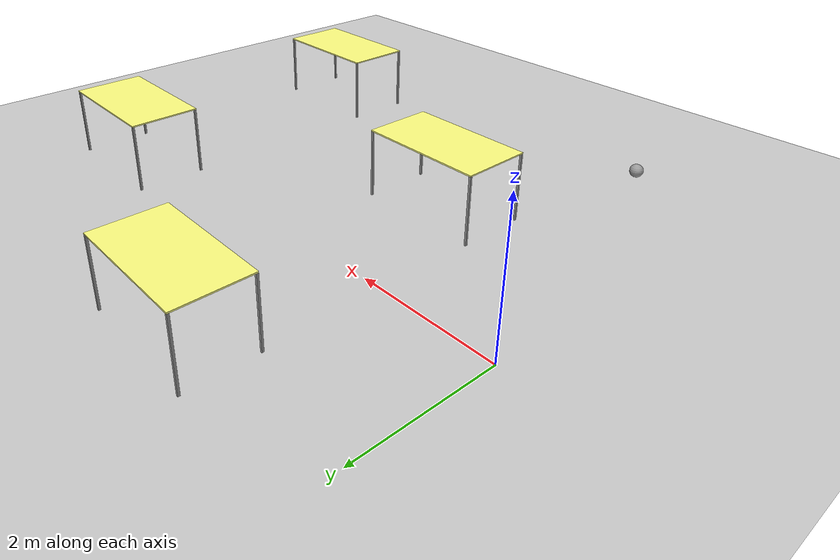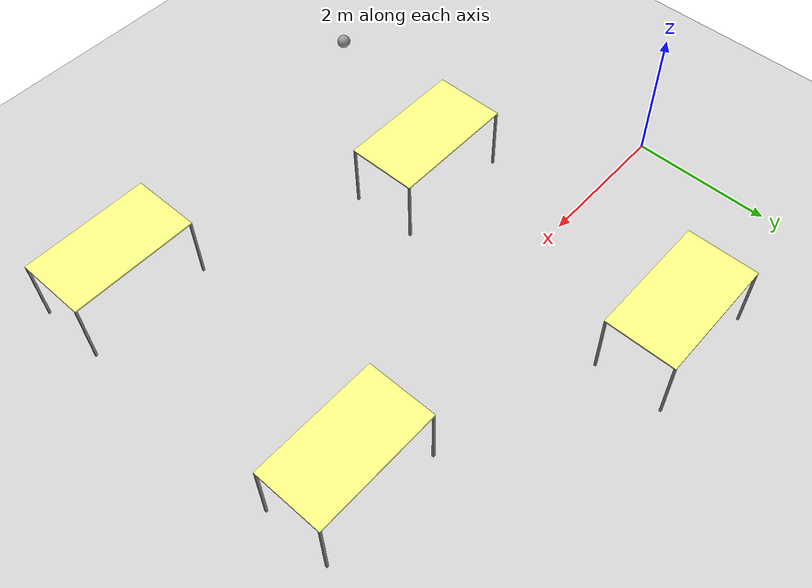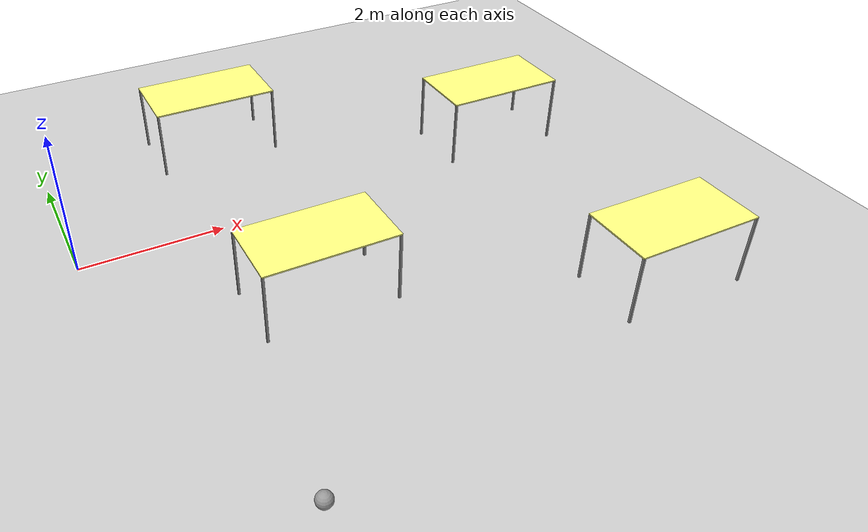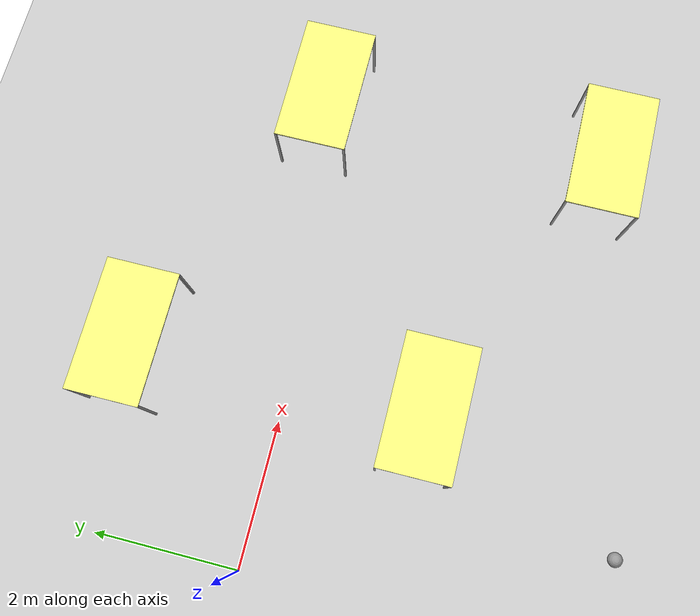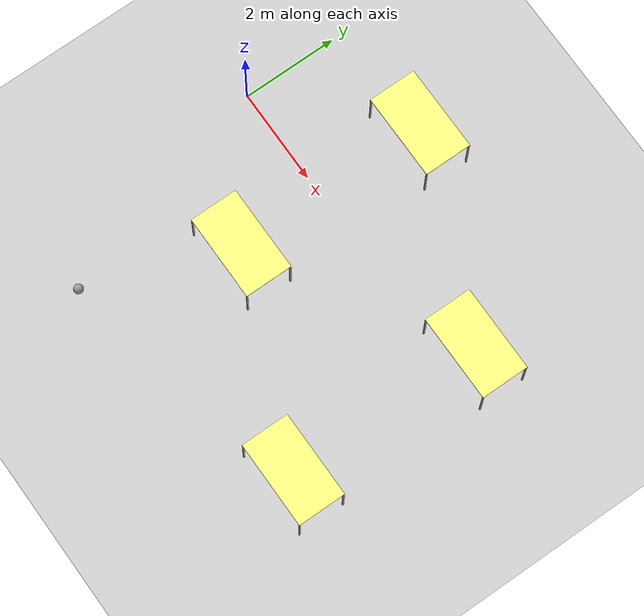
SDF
<sdf version="1.6">
 <world name="default">
  <model name="ground_plane">
   <static>1</static>
   <link name="link">
    <collision name="collision">
     <geometry><plane><normal>0 0 1</normal><size>100 100</size></plane></geometry>
     <surface><friction><ode><mu>100</mu><mu2>50</mu2></ode></friction></surface>
    </collision>
    <visual name="visual">
     <cast_shadows>0</cast_shadows>
     <geometry><plane><normal>0 0 1</normal><size>100 100</size></plane></geometry>
     <material>
      <script><uri>file://media/materials/scripts/gazebo.material</uri><name>Gazebo/Grey</name></script>
     </material>
    </visual>
   </link>
  </model>
  <model name="custom_table_clone_5">
   <link name="link_0">
    <pose>-1e-06 0 0.4 0 -0 0</pose>
    <inertial>
     <mass>1</mass>
     <inertia>
      <ixx>0.166667</ixx>
      <ixy>0</ixy>
      <ixz>0</ixz>
      <iyy>0.166667</iyy>
      <iyz>0</iyz>
      <izz>0.166667</izz>
     </inertia>
    </inertial>
    <visual name="visual">
     <geometry><box><size>1.8 1 0.02</size></box></geometry>
     <material>
      <lighting>1</lighting>
      <script><uri>file://media/materials/scripts/gazebo.material</uri><name>Gazebo/Grey</name></script>
      <shader type="pixel"><normal_map>__default__</normal_map></shader>
      <ambient>0.4 0.4 0.4 0.5</ambient>
      <diffuse>1 1 0.5 1</diffuse>
      <specular>0.4 0.4 0.4 1</specular>
      <emissive>0 0 0 1</emissive>
     </material>
    </visual>
    <collision name="collision">
     <geometry><box><size>1.8 1 0.02</size></box></geometry>
     <surface>
      <friction>
       <ode><mu>1</mu><mu2>1</mu2><fdir1>0 0 0</fdir1><slip1>0</slip1><slip2>0</slip2></ode>
       <torsional>
        <coefficient>1</coefficient>
        <patch_radius>0</patch_radius>
        <surface_radius>0</surface_radius>
        <use_patch_radius>1</use_patch_radius>
        <ode><slip>0</slip></ode>
       </torsional>
      </friction>
      <bounce><restitution_coefficient>0</restitution_coefficient><threshold>1e+06</threshold></bounce>
      <contact>
       <collide_without_contact>0</collide_without_contact>
       <collide_without_contact_bitmask>1</collide_without_contact_bitmask>
       <collide_bitmask>1</collide_bitmask>
       <ode>
        <soft_cfm>0</soft_cfm>
        <soft_erp>0.2</soft_erp>
        <kp>1e+13</kp>
        <kd>1</kd>
        <max_vel>0.01</max_vel>
        <min_depth>0</min_depth>
       </ode>
       <bullet>
        <split_impulse>1</split_impulse>
        <split_impulse_penetration_threshold>-0.01</split_impulse_penetration_threshold>
        <soft_cfm>0</soft_cfm>
        <soft_erp>0.2</soft_erp>
        <kp>1e+13</kp>
        <kd>1</kd>
       </bullet>
      </contact>
     </surface>
    </collision>
   </link>
   <link name="link_1_clone">
    <pose>0.884999 -0.485 -0.1 0 -0 0</pose>
    <inertial>
     <mass>1</mass>
     <inertia>
      <ixx>0.166667</ixx>
      <ixy>0</ixy>
      <ixz>0</ixz>
      <iyy>0.166667</iyy>
      <iyz>0</iyz>
      <izz>0.166667</izz>
     </inertia>
    </inertial>
    <visual name="visual">
     <geometry><box><size>0.03 0.03 0.98</size></box></geometry>
     <material>
      <lighting>1</lighting>
      <script><uri>file://media/materials/scripts/gazebo.material</uri><name>Gazebo/Grey</name></script>
      <shader type="pixel"><normal_map>__default__</normal_map></shader>
      <ambient>0.3 0.3 0.3 1</ambient>
      <diffuse>0.7 0.7 0.7 1</diffuse>
      <specular>0.01 0.01 0.01 1</specular>
      <emissive>0 0 0 1</emissive>
     </material>
    </visual>
    <collision name="collision">
     <geometry><box><size>0.03 0.03 0.98</size></box></geometry>
     <surface>
      <friction>
       <ode><mu>1</mu><mu2>1</mu2><fdir1>0 0 0</fdir1><slip1>0</slip1><slip2>0</slip2></ode>
       <torsional>
        <coefficient>1</coefficient>
        <patch_radius>0</patch_radius>
        <surface_radius>0</surface_radius>
        <use_patch_radius>1</use_patch_radius>
        <ode><slip>0</slip></ode>
       </torsional>
      </friction>
      <bounce><restitution_coefficient>0</restitution_coefficient><threshold>1e+06</threshold></bounce>
      <contact>
       <collide_without_contact>0</collide_without_contact>
       <collide_without_contact_bitmask>1</collide_without_contact_bitmask>
       <collide_bitmask>1</collide_bitmask>
       <ode>
        <soft_cfm>0</soft_cfm>
        <soft_erp>0.2</soft_erp>
        <kp>1e+13</kp>
        <kd>1</kd>
        <max_vel>0.01</max_vel>
        <min_depth>0</min_depth>
       </ode>
       <bullet>
        <split_impulse>1</split_impulse>
        <split_impulse_penetration_threshold>-0.01</split_impulse_penetration_threshold>
        <soft_cfm>0</soft_cfm>
        <soft_erp>0.2</soft_erp>
        <kp>1e+13</kp>
        <kd>1</kd>
       </bullet>
      </contact>
     </surface>
    </collision>
   </link>
   <link name="link_1_clone_0">
    <pose>-0.885001 0.485 -0.1 0 -0 0</pose>
    <inertial>
     <mass>1</mass>
     <inertia>
      <ixx>0.166667</ixx>
      <ixy>0</ixy>
      <ixz>0</ixz>
      <iyy>0.166667</iyy>
      <iyz>0</iyz>
      <izz>0.166667</izz>
     </inertia>
    </inertial>
    <visual name="visual">
     <geometry><box><size>0.03 0.03 0.98</size></box></geometry>
     <material>
      <lighting>1</lighting>
      <script><uri>file://media/materials/scripts/gazebo.material</uri><name>Gazebo/Grey</name></script>
      <shader type="pixel"><normal_map>__default__</normal_map></shader>
      <ambient>0.3 0.3 0.3 1</ambient>
      <diffuse>0.7 0.7 0.7 1</diffuse>
      <specular>0.01 0.01 0.01 1</specular>
      <emissive>0 0 0 1</emissive>
     </material>
    </visual>
    <collision name="collision">
     <geometry><box><size>0.03 0.03 0.98</size></box></geometry>
     <surface>
      <friction>
       <ode><mu>1</mu><mu2>1</mu2><fdir1>0 0 0</fdir1><slip1>0</slip1><slip2>0</slip2></ode>
       <torsional>
        <coefficient>1</coefficient>
        <patch_radius>0</patch_radius>
        <surface_radius>0</surface_radius>
        <use_patch_radius>1</use_patch_radius>
        <ode><slip>0</slip></ode>
       </torsional>
      </friction>
      <bounce><restitution_coefficient>0</restitution_coefficient><threshold>1e+06</threshold></bounce>
      <contact>
       <collide_without_contact>0</collide_without_contact>
       <collide_without_contact_bitmask>1</collide_without_contact_bitmask>
       <collide_bitmask>1</collide_bitmask>
       <ode>
        <soft_cfm>0</soft_cfm>
        <soft_erp>0.2</soft_erp>
        <kp>1e+13</kp>
        <kd>1</kd>
        <max_vel>0.01</max_vel>
        <min_depth>0</min_depth>
       </ode>
       <bullet>
        <split_impulse>1</split_impulse>
        <split_impulse_penetration_threshold>-0.01</split_impulse_penetration_threshold>
        <soft_cfm>0</soft_cfm>
        <soft_erp>0.2</soft_erp>
        <kp>1e+13</kp>
        <kd>1</kd>
       </bullet>
      </contact>
     </surface>
    </collision>
   </link>
   <link name="link_1_clone_clone">
    <pose>0.884999 0.485 -0.1 0 -0 0</pose>
    <inertial>
     <mass>1</mass>
     <inertia>
      <ixx>0.166667</ixx>
      <ixy>0</ixy>
      <ixz>0</ixz>
      <iyy>0.166667</iyy>
      <iyz>0</iyz>
      <izz>0.166667</izz>
     </inertia>
    </inertial>
    <visual name="visual">
     <geometry><box><size>0.03 0.03 0.98</size></box></geometry>
     <material>
      <lighting>1</lighting>
      <script><uri>file://media/materials/scripts/gazebo.material</uri><name>Gazebo/Grey</name></script>
      <shader type="pixel"><normal_map>__default__</normal_map></shader>
      <ambient>0.3 0.3 0.3 1</ambient>
      <diffuse>0.7 0.7 0.7 1</diffuse>
      <specular>0.01 0.01 0.01 1</specular>
      <emissive>0 0 0 1</emissive>
     </material>
    </visual>
    <collision name="collision">
     <geometry><box><size>0.03 0.03 0.98</size></box></geometry>
     <surface>
      <friction>
       <ode><mu>1</mu><mu2>1</mu2><fdir1>0 0 0</fdir1><slip1>0</slip1><slip2>0</slip2></ode>
       <torsional>
        <coefficient>1</coefficient>
        <patch_radius>0</patch_radius>
        <surface_radius>0</surface_radius>
        <use_patch_radius>1</use_patch_radius>
        <ode><slip>0</slip></ode>
       </torsional>
      </friction>
      <bounce><restitution_coefficient>0</restitution_coefficient><threshold>1e+06</threshold></bounce>
      <contact>
       <collide_without_contact>0</collide_without_contact>
       <collide_without_contact_bitmask>1</collide_without_contact_bitmask>
       <collide_bitmask>1</collide_bitmask>
       <ode>
        <soft_cfm>0</soft_cfm>
        <soft_erp>0.2</soft_erp>
        <kp>1e+13</kp>
        <kd>1</kd>
        <max_vel>0.01</max_vel>
        <min_depth>0</min_depth>
       </ode>
       <bullet>
        <split_impulse>1</split_impulse>
        <split_impulse_penetration_threshold>-0.01</split_impulse_penetration_threshold>
        <soft_cfm>0</soft_cfm>
        <soft_erp>0.2</soft_erp>
        <kp>1e+13</kp>
        <kd>1</kd>
       </bullet>
      </contact>
     </surface>
    </collision>
   </link>
   <link name="link_1_clone_clone_0">
    <pose>-0.885001 -0.485 -0.1 0 -0 0</pose>
    <inertial>
     <mass>1</mass>
     <inertia>
      <ixx>0.166667</ixx>
      <ixy>0</ixy>
      <ixz>0</ixz>
      <iyy>0.166667</iyy>
      <iyz>0</iyz>
      <izz>0.166667</izz>
     </inertia>
    </inertial>
    <visual name="visual">
     <geometry><box><size>0.03 0.03 0.98</size></box></geometry>
     <material>
      <lighting>1</lighting>
      <script><uri>file://media/materials/scripts/gazebo.material</uri><name>Gazebo/Grey</name></script>
      <shader type="pixel"><normal_map>__default__</normal_map></shader>
      <ambient>0.3 0.3 0.3 1</ambient>
      <diffuse>0.7 0.7 0.7 1</diffuse>
      <specular>0.01 0.01 0.01 1</specular>
      <emissive>0 0 0 1</emissive>
     </material>
    </visual>
    <collision name="collision">
     <geometry><box><size>0.03 0.03 0.98</size></box></geometry>
     <surface>
      <friction>
       <ode><mu>1</mu><mu2>1</mu2><fdir1>0 0 0</fdir1><slip1>0</slip1><slip2>0</slip2></ode>
       <torsional>
        <coefficient>1</coefficient>
        <patch_radius>0</patch_radius>
        <surface_radius>0</surface_radius>
        <use_patch_radius>1</use_patch_radius>
        <ode><slip>0</slip></ode>
       </torsional>
      </friction>
      <bounce><restitution_coefficient>0</restitution_coefficient><threshold>1e+06</threshold></bounce>
      <contact>
       <collide_without_contact>0</collide_without_contact>
       <collide_without_contact_bitmask>1</collide_without_contact_bitmask>
       <collide_bitmask>1</collide_bitmask>
       <ode>
        <soft_cfm>0</soft_cfm>
        <soft_erp>0.2</soft_erp>
        <kp>1e+13</kp>
        <kd>1</kd>
        <max_vel>0.01</max_vel>
        <min_depth>0</min_depth>
       </ode>
       <bullet>
        <split_impulse>1</split_impulse>
        <split_impulse_penetration_threshold>-0.01</split_impulse_penetration_threshold>
        <soft_cfm>0</soft_cfm>
        <soft_erp>0.2</soft_erp>
        <kp>1e+13</kp>
        <kd>1</kd>
       </bullet>
      </contact>
     </surface>
    </collision>
   </link>
   <joint name="link_0_JOINT_0" type="fixed">
    <parent>link_0</parent>
    <child>link_1_clone</child>
    <physics>
     <ode><limit><cfm>0</cfm><erp>0.2</erp></limit><suspension><cfm>0</cfm><erp>0.2</erp></suspension></ode>
    </physics>
   </joint>
   <joint name="link_0_JOINT_1" type="fixed">
    <parent>link_0</parent>
    <child>link_1_clone_0</child>
    <physics>
     <ode><limit><cfm>0</cfm><erp>0.2</erp></limit><suspension><cfm>0</cfm><erp>0.2</erp></suspension></ode>
    </physics>
   </joint>
   <joint name="link_0_JOINT_2" type="fixed">
    <parent>link_0</parent>
    <child>link_1_clone_clone</child>
    <physics>
     <ode><limit><cfm>0</cfm><erp>0.2</erp></limit><suspension><cfm>0</cfm><erp>0.2</erp></suspension></ode>
    </physics>
   </joint>
   <joint name="link_0_JOINT_3" type="fixed">
    <parent>link_0</parent>
    <child>link_1_clone_clone_0</child>
    <physics>
     <ode><limit><cfm>0</cfm><erp>0.2</erp></limit><suspension><cfm>0</cfm><erp>0.2</erp></suspension></ode>
    </physics>
   </joint>
   <static>1</static>
   <pose>2.58267 2.15739 0.6 0 -0 0</pose>
  </model>
  <model name="custom_table_clone_6">
   <link name="link_0">
    <pose>-1e-06 0 0.4 0 -0 0</pose>
    <inertial>
     <mass>1</mass>
     <inertia>
      <ixx>0.166667</ixx>
      <ixy>0</ixy>
      <ixz>0</ixz>
      <iyy>0.166667</iyy>
      <iyz>0</iyz>
      <izz>0.166667</izz>
     </inertia>
    </inertial>
    <visual name="visual">
     <geometry><box><size>1.8 1 0.02</size></box></geometry>
     <material>
      <lighting>1</lighting>
      <script><uri>file://media/materials/scripts/gazebo.material</uri><name>Gazebo/Grey</name></script>
      <shader type="pixel"><normal_map>__default__</normal_map></shader>
      <ambient>0.4 0.4 0.4 0.5</ambient>
      <diffuse>1 1 0.5 1</diffuse>
      <specular>0.4 0.4 0.4 1</specular>
      <emissive>0 0 0 1</emissive>
     </material>
    </visual>
    <collision name="collision">
     <geometry><box><size>1.8 1 0.02</size></box></geometry>
     <surface>
      <friction>
       <ode><mu>1</mu><mu2>1</mu2><fdir1>0 0 0</fdir1><slip1>0</slip1><slip2>0</slip2></ode>
       <torsional>
        <coefficient>1</coefficient>
        <patch_radius>0</patch_radius>
        <surface_radius>0</surface_radius>
        <use_patch_radius>1</use_patch_radius>
        <ode><slip>0</slip></ode>
       </torsional>
      </friction>
      <bounce><restitution_coefficient>0</restitution_coefficient><threshold>1e+06</threshold></bounce>
      <contact>
       <collide_without_contact>0</collide_without_contact>
       <collide_without_contact_bitmask>1</collide_without_contact_bitmask>
       <collide_bitmask>1</collide_bitmask>
       <ode>
        <soft_cfm>0</soft_cfm>
        <soft_erp>0.2</soft_erp>
        <kp>1e+13</kp>
        <kd>1</kd>
        <max_vel>0.01</max_vel>
        <min_depth>0</min_depth>
       </ode>
       <bullet>
        <split_impulse>1</split_impulse>
        <split_impulse_penetration_threshold>-0.01</split_impulse_penetration_threshold>
        <soft_cfm>0</soft_cfm>
        <soft_erp>0.2</soft_erp>
        <kp>1e+13</kp>
        <kd>1</kd>
       </bullet>
      </contact>
     </surface>
    </collision>
   </link>
   <link name="link_1_clone">
    <pose>0.884999 -0.485 -0.1 0 -0 0</pose>
    <inertial>
     <mass>1</mass>
     <inertia>
      <ixx>0.166667</ixx>
      <ixy>0</ixy>
      <ixz>0</ixz>
      <iyy>0.166667</iyy>
      <iyz>0</iyz>
      <izz>0.166667</izz>
     </inertia>
    </inertial>
    <visual name="visual">
     <geometry><box><size>0.03 0.03 0.98</size></box></geometry>
     <material>
      <lighting>1</lighting>
      <script><uri>file://media/materials/scripts/gazebo.material</uri><name>Gazebo/Grey</name></script>
      <shader type="pixel"><normal_map>__default__</normal_map></shader>
      <ambient>0.3 0.3 0.3 1</ambient>
      <diffuse>0.7 0.7 0.7 1</diffuse>
      <specular>0.01 0.01 0.01 1</specular>
      <emissive>0 0 0 1</emissive>
     </material>
    </visual>
    <collision name="collision">
     <geometry><box><size>0.03 0.03 0.98</size></box></geometry>
     <surface>
      <friction>
       <ode><mu>1</mu><mu2>1</mu2><fdir1>0 0 0</fdir1><slip1>0</slip1><slip2>0</slip2></ode>
       <torsional>
        <coefficient>1</coefficient>
        <patch_radius>0</patch_radius>
        <surface_radius>0</surface_radius>
        <use_patch_radius>1</use_patch_radius>
        <ode><slip>0</slip></ode>
       </torsional>
      </friction>
      <bounce><restitution_coefficient>0</restitution_coefficient><threshold>1e+06</threshold></bounce>
      <contact>
       <collide_without_contact>0</collide_without_contact>
       <collide_without_contact_bitmask>1</collide_without_contact_bitmask>
       <collide_bitmask>1</collide_bitmask>
       <ode>
        <soft_cfm>0</soft_cfm>
        <soft_erp>0.2</soft_erp>
        <kp>1e+13</kp>
        <kd>1</kd>
        <max_vel>0.01</max_vel>
        <min_depth>0</min_depth>
       </ode>
       <bullet>
        <split_impulse>1</split_impulse>
        <split_impulse_penetration_threshold>-0.01</split_impulse_penetration_threshold>
        <soft_cfm>0</soft_cfm>
        <soft_erp>0.2</soft_erp>
        <kp>1e+13</kp>
        <kd>1</kd>
       </bullet>
      </contact>
     </surface>
    </collision>
   </link>
   <link name="link_1_clone_0">
    <pose>-0.885001 0.485 -0.1 0 -0 0</pose>
    <inertial>
     <mass>1</mass>
     <inertia>
      <ixx>0.166667</ixx>
      <ixy>0</ixy>
      <ixz>0</ixz>
      <iyy>0.166667</iyy>
      <iyz>0</iyz>
      <izz>0.166667</izz>
     </inertia>
    </inertial>
    <visual name="visual">
     <geometry><box><size>0.03 0.03 0.98</size></box></geometry>
     <material>
      <lighting>1</lighting>
      <script><uri>file://media/materials/scripts/gazebo.material</uri><name>Gazebo/Grey</name></script>
      <shader type="pixel"><normal_map>__default__</normal_map></shader>
      <ambient>0.3 0.3 0.3 1</ambient>
      <diffuse>0.7 0.7 0.7 1</diffuse>
      <specular>0.01 0.01 0.01 1</specular>
      <emissive>0 0 0 1</emissive>
     </material>
    </visual>
    <collision name="collision">
     <geometry><box><size>0.03 0.03 0.98</size></box></geometry>
     <surface>
      <friction>
       <ode><mu>1</mu><mu2>1</mu2><fdir1>0 0 0</fdir1><slip1>0</slip1><slip2>0</slip2></ode>
       <torsional>
        <coefficient>1</coefficient>
        <patch_radius>0</patch_radius>
        <surface_radius>0</surface_radius>
        <use_patch_radius>1</use_patch_radius>
        <ode><slip>0</slip></ode>
       </torsional>
      </friction>
      <bounce><restitution_coefficient>0</restitution_coefficient><threshold>1e+06</threshold></bounce>
      <contact>
       <collide_without_contact>0</collide_without_contact>
       <collide_without_contact_bitmask>1</collide_without_contact_bitmask>
       <collide_bitmask>1</collide_bitmask>
       <ode>
        <soft_cfm>0</soft_cfm>
        <soft_erp>0.2</soft_erp>
        <kp>1e+13</kp>
        <kd>1</kd>
        <max_vel>0.01</max_vel>
        <min_depth>0</min_depth>
       </ode>
       <bullet>
        <split_impulse>1</split_impulse>
        <split_impulse_penetration_threshold>-0.01</split_impulse_penetration_threshold>
        <soft_cfm>0</soft_cfm>
        <soft_erp>0.2</soft_erp>
        <kp>1e+13</kp>
        <kd>1</kd>
       </bullet>
      </contact>
     </surface>
    </collision>
   </link>
   <link name="link_1_clone_clone">
    <pose>0.884999 0.485 -0.1 0 -0 0</pose>
    <inertial>
     <mass>1</mass>
     <inertia>
      <ixx>0.166667</ixx>
      <ixy>0</ixy>
      <ixz>0</ixz>
      <iyy>0.166667</iyy>
      <iyz>0</iyz>
      <izz>0.166667</izz>
     </inertia>
    </inertial>
    <visual name="visual">
     <geometry><box><size>0.03 0.03 0.98</size></box></geometry>
     <material>
      <lighting>1</lighting>
      <script><uri>file://media/materials/scripts/gazebo.material</uri><name>Gazebo/Grey</name></script>
      <shader type="pixel"><normal_map>__default__</normal_map></shader>
      <ambient>0.3 0.3 0.3 1</ambient>
      <diffuse>0.7 0.7 0.7 1</diffuse>
      <specular>0.01 0.01 0.01 1</specular>
      <emissive>0 0 0 1</emissive>
     </material>
    </visual>
    <collision name="collision">
     <geometry><box><size>0.03 0.03 0.98</size></box></geometry>
     <surface>
      <friction>
       <ode><mu>1</mu><mu2>1</mu2><fdir1>0 0 0</fdir1><slip1>0</slip1><slip2>0</slip2></ode>
       <torsional>
        <coefficient>1</coefficient>
        <patch_radius>0</patch_radius>
        <surface_radius>0</surface_radius>
        <use_patch_radius>1</use_patch_radius>
        <ode><slip>0</slip></ode>
       </torsional>
      </friction>
      <bounce><restitution_coefficient>0</restitution_coefficient><threshold>1e+06</threshold></bounce>
      <contact>
       <collide_without_contact>0</collide_without_contact>
       <collide_without_contact_bitmask>1</collide_without_contact_bitmask>
       <collide_bitmask>1</collide_bitmask>
       <ode>
        <soft_cfm>0</soft_cfm>
        <soft_erp>0.2</soft_erp>
        <kp>1e+13</kp>
        <kd>1</kd>
        <max_vel>0.01</max_vel>
        <min_depth>0</min_depth>
       </ode>
       <bullet>
        <split_impulse>1</split_impulse>
        <split_impulse_penetration_threshold>-0.01</split_impulse_penetration_threshold>
        <soft_cfm>0</soft_cfm>
        <soft_erp>0.2</soft_erp>
        <kp>1e+13</kp>
        <kd>1</kd>
       </bullet>
      </contact>
     </surface>
    </collision>
   </link>
   <link name="link_1_clone_clone_0">
    <pose>-0.885001 -0.485 -0.1 0 -0 0</pose>
    <inertial>
     <mass>1</mass>
     <inertia>
      <ixx>0.166667</ixx>
      <ixy>0</ixy>
      <ixz>0</ixz>
      <iyy>0.166667</iyy>
      <iyz>0</iyz>
      <izz>0.166667</izz>
     </inertia>
    </inertial>
    <visual name="visual">
     <geometry><box><size>0.03 0.03 0.98</size></box></geometry>
     <material>
      <lighting>1</lighting>
      <script><uri>file://media/materials/scripts/gazebo.material</uri><name>Gazebo/Grey</name></script>
      <shader type="pixel"><normal_map>__default__</normal_map></shader>
      <ambient>0.3 0.3 0.3 1</ambient>
      <diffuse>0.7 0.7 0.7 1</diffuse>
      <specular>0.01 0.01 0.01 1</specular>
      <emissive>0 0 0 1</emissive>
     </material>
    </visual>
    <collision name="collision">
     <geometry><box><size>0.03 0.03 0.98</size></box></geometry>
     <surface>
      <friction>
       <ode><mu>1</mu><mu2>1</mu2><fdir1>0 0 0</fdir1><slip1>0</slip1><slip2>0</slip2></ode>
       <torsional>
        <coefficient>1</coefficient>
        <patch_radius>0</patch_radius>
        <surface_radius>0</surface_radius>
        <use_patch_radius>1</use_patch_radius>
        <ode><slip>0</slip></ode>
       </torsional>
      </friction>
      <bounce><restitution_coefficient>0</restitution_coefficient><threshold>1e+06</threshold></bounce>
      <contact>
       <collide_without_contact>0</collide_without_contact>
       <collide_without_contact_bitmask>1</collide_without_contact_bitmask>
       <collide_bitmask>1</collide_bitmask>
       <ode>
        <soft_cfm>0</soft_cfm>
        <soft_erp>0.2</soft_erp>
        <kp>1e+13</kp>
        <kd>1</kd>
        <max_vel>0.01</max_vel>
        <min_depth>0</min_depth>
       </ode>
       <bullet>
        <split_impulse>1</split_impulse>
        <split_impulse_penetration_threshold>-0.01</split_impulse_penetration_threshold>
        <soft_cfm>0</soft_cfm>
        <soft_erp>0.2</soft_erp>
        <kp>1e+13</kp>
        <kd>1</kd>
       </bullet>
      </contact>
     </surface>
    </collision>
   </link>
   <joint name="link_0_JOINT_0" type="fixed">
    <parent>link_0</parent>
    <child>link_1_clone</child>
    <physics>
     <ode><limit><cfm>0</cfm><erp>0.2</erp></limit><suspension><cfm>0</cfm><erp>0.2</erp></suspension></ode>
    </physics>
   </joint>
   <joint name="link_0_JOINT_1" type="fixed">
    <parent>link_0</parent>
    <child>link_1_clone_0</child>
    <physics>
     <ode><limit><cfm>0</cfm><erp>0.2</erp></limit><suspension><cfm>0</cfm><erp>0.2</erp></suspension></ode>
    </physics>
   </joint>
   <joint name="link_0_JOINT_2" type="fixed">
    <parent>link_0</parent>
    <child>link_1_clone_clone</child>
    <physics>
     <ode><limit><cfm>0</cfm><erp>0.2</erp></limit><suspension><cfm>0</cfm><erp>0.2</erp></suspension></ode>
    </physics>
   </joint>
   <joint name="link_0_JOINT_3" type="fixed">
    <parent>link_0</parent>
    <child>link_1_clone_clone_0</child>
    <physics>
     <ode><limit><cfm>0</cfm><erp>0.2</erp></limit><suspension><cfm>0</cfm><erp>0.2</erp></suspension></ode>
    </physics>
   </joint>
   <static>1</static>
   <pose>6.61875 0.497969 0.6 0 -0 0</pose>
  </model>
  <model name="custom_table_clone_7">
   <link name="link_0">
    <pose>-1e-06 0 0.4 0 -0 0</pose>
    <inertial>
     <mass>1</mass>
     <inertia>
      <ixx>0.166667</ixx>
      <ixy>0</ixy>
      <ixz>0</ixz>
      <iyy>0.166667</iyy>
      <iyz>0</iyz>
      <izz>0.166667</izz>
     </inertia>
    </inertial>
    <visual name="visual">
     <geometry><box><size>1.8 1 0.02</size></box></geometry>
     <material>
      <lighting>1</lighting>
      <script><uri>file://media/materials/scripts/gazebo.material</uri><name>Gazebo/Grey</name></script>
      <shader type="pixel"><normal_map>__default__</normal_map></shader>
      <ambient>0.4 0.4 0.4 0.5</ambient>
      <diffuse>1 1 0.5 1</diffuse>
      <specular>0.4 0.4 0.4 1</specular>
      <emissive>0 0 0 1</emissive>
     </material>
    </visual>
    <collision name="collision">
     <geometry><box><size>1.8 1 0.02</size></box></geometry>
     <surface>
      <friction>
       <ode><mu>1</mu><mu2>1</mu2><fdir1>0 0 0</fdir1><slip1>0</slip1><slip2>0</slip2></ode>
       <torsional>
        <coefficient>1</coefficient>
        <patch_radius>0</patch_radius>
        <surface_radius>0</surface_radius>
        <use_patch_radius>1</use_patch_radius>
        <ode><slip>0</slip></ode>
       </torsional>
      </friction>
      <bounce><restitution_coefficient>0</restitution_coefficient><threshold>1e+06</threshold></bounce>
      <contact>
       <collide_without_contact>0</collide_without_contact>
       <collide_without_contact_bitmask>1</collide_without_contact_bitmask>
       <collide_bitmask>1</collide_bitmask>
       <ode>
        <soft_cfm>0</soft_cfm>
        <soft_erp>0.2</soft_erp>
        <kp>1e+13</kp>
        <kd>1</kd>
        <max_vel>0.01</max_vel>
        <min_depth>0</min_depth>
       </ode>
       <bullet>
        <split_impulse>1</split_impulse>
        <split_impulse_penetration_threshold>-0.01</split_impulse_penetration_threshold>
        <soft_cfm>0</soft_cfm>
        <soft_erp>0.2</soft_erp>
        <kp>1e+13</kp>
        <kd>1</kd>
       </bullet>
      </contact>
     </surface>
    </collision>
   </link>
   <link name="link_1_clone">
    <pose>0.884999 -0.485 -0.1 0 -0 0</pose>
    <inertial>
     <mass>1</mass>
     <inertia>
      <ixx>0.166667</ixx>
      <ixy>0</ixy>
      <ixz>0</ixz>
      <iyy>0.166667</iyy>
      <iyz>0</iyz>
      <izz>0.166667</izz>
     </inertia>
    </inertial>
    <visual name="visual">
     <geometry><box><size>0.03 0.03 0.98</size></box></geometry>
     <material>
      <lighting>1</lighting>
      <script><uri>file://media/materials/scripts/gazebo.material</uri><name>Gazebo/Grey</name></script>
      <shader type="pixel"><normal_map>__default__</normal_map></shader>
      <ambient>0.3 0.3 0.3 1</ambient>
      <diffuse>0.7 0.7 0.7 1</diffuse>
      <specular>0.01 0.01 0.01 1</specular>
      <emissive>0 0 0 1</emissive>
     </material>
    </visual>
    <collision name="collision">
     <geometry><box><size>0.03 0.03 0.98</size></box></geometry>
     <surface>
      <friction>
       <ode><mu>1</mu><mu2>1</mu2><fdir1>0 0 0</fdir1><slip1>0</slip1><slip2>0</slip2></ode>
       <torsional>
        <coefficient>1</coefficient>
        <patch_radius>0</patch_radius>
        <surface_radius>0</surface_radius>
        <use_patch_radius>1</use_patch_radius>
        <ode><slip>0</slip></ode>
       </torsional>
      </friction>
      <bounce><restitution_coefficient>0</restitution_coefficient><threshold>1e+06</threshold></bounce>
      <contact>
       <collide_without_contact>0</collide_without_contact>
       <collide_without_contact_bitmask>1</collide_without_contact_bitmask>
       <collide_bitmask>1</collide_bitmask>
       <ode>
        <soft_cfm>0</soft_cfm>
        <soft_erp>0.2</soft_erp>
        <kp>1e+13</kp>
        <kd>1</kd>
        <max_vel>0.01</max_vel>
        <min_depth>0</min_depth>
       </ode>
       <bullet>
        <split_impulse>1</split_impulse>
        <split_impulse_penetration_threshold>-0.01</split_impulse_penetration_threshold>
        <soft_cfm>0</soft_cfm>
        <soft_erp>0.2</soft_erp>
        <kp>1e+13</kp>
        <kd>1</kd>
       </bullet>
      </contact>
     </surface>
    </collision>
   </link>
   <link name="link_1_clone_0">
    <pose>-0.885001 0.485 -0.1 0 -0 0</pose>
    <inertial>
     <mass>1</mass>
     <inertia>
      <ixx>0.166667</ixx>
      <ixy>0</ixy>
      <ixz>0</ixz>
      <iyy>0.166667</iyy>
      <iyz>0</iyz>
      <izz>0.166667</izz>
     </inertia>
    </inertial>
    <visual name="visual">
     <geometry><box><size>0.03 0.03 0.98</size></box></geometry>
     <material>
      <lighting>1</lighting>
      <script><uri>file://media/materials/scripts/gazebo.material</uri><name>Gazebo/Grey</name></script>
      <shader type="pixel"><normal_map>__default__</normal_map></shader>
      <ambient>0.3 0.3 0.3 1</ambient>
      <diffuse>0.7 0.7 0.7 1</diffuse>
      <specular>0.01 0.01 0.01 1</specular>
      <emissive>0 0 0 1</emissive>
     </material>
    </visual>
    <collision name="collision">
     <geometry><box><size>0.03 0.03 0.98</size></box></geometry>
     <surface>
      <friction>
       <ode><mu>1</mu><mu2>1</mu2><fdir1>0 0 0</fdir1><slip1>0</slip1><slip2>0</slip2></ode>
       <torsional>
        <coefficient>1</coefficient>
        <patch_radius>0</patch_radius>
        <surface_radius>0</surface_radius>
        <use_patch_radius>1</use_patch_radius>
        <ode><slip>0</slip></ode>
       </torsional>
      </friction>
      <bounce><restitution_coefficient>0</restitution_coefficient><threshold>1e+06</threshold></bounce>
      <contact>
       <collide_without_contact>0</collide_without_contact>
       <collide_without_contact_bitmask>1</collide_without_contact_bitmask>
       <collide_bitmask>1</collide_bitmask>
       <ode>
        <soft_cfm>0</soft_cfm>
        <soft_erp>0.2</soft_erp>
        <kp>1e+13</kp>
        <kd>1</kd>
        <max_vel>0.01</max_vel>
        <min_depth>0</min_depth>
       </ode>
       <bullet>
        <split_impulse>1</split_impulse>
        <split_impulse_penetration_threshold>-0.01</split_impulse_penetration_threshold>
        <soft_cfm>0</soft_cfm>
        <soft_erp>0.2</soft_erp>
        <kp>1e+13</kp>
        <kd>1</kd>
       </bullet>
      </contact>
     </surface>
    </collision>
   </link>
   <link name="link_1_clone_clone">
    <pose>0.884999 0.485 -0.1 0 -0 0</pose>
    <inertial>
     <mass>1</mass>
     <inertia>
      <ixx>0.166667</ixx>
      <ixy>0</ixy>
      <ixz>0</ixz>
      <iyy>0.166667</iyy>
      <iyz>0</iyz>
      <izz>0.166667</izz>
     </inertia>
    </inertial>
    <visual name="visual">
     <geometry><box><size>0.03 0.03 0.98</size></box></geometry>
     <material>
      <lighting>1</lighting>
      <script><uri>file://media/materials/scripts/gazebo.material</uri><name>Gazebo/Grey</name></script>
      <shader type="pixel"><normal_map>__default__</normal_map></shader>
      <ambient>0.3 0.3 0.3 1</ambient>
      <diffuse>0.7 0.7 0.7 1</diffuse>
      <specular>0.01 0.01 0.01 1</specular>
      <emissive>0 0 0 1</emissive>
     </material>
    </visual>
    <collision name="collision">
     <geometry><box><size>0.03 0.03 0.98</size></box></geometry>
     <surface>
      <friction>
       <ode><mu>1</mu><mu2>1</mu2><fdir1>0 0 0</fdir1><slip1>0</slip1><slip2>0</slip2></ode>
       <torsional>
        <coefficient>1</coefficient>
        <patch_radius>0</patch_radius>
        <surface_radius>0</surface_radius>
        <use_patch_radius>1</use_patch_radius>
        <ode><slip>0</slip></ode>
       </torsional>
      </friction>
      <bounce><restitution_coefficient>0</restitution_coefficient><threshold>1e+06</threshold></bounce>
      <contact>
       <collide_without_contact>0</collide_without_contact>
       <collide_without_contact_bitmask>1</collide_without_contact_bitmask>
       <collide_bitmask>1</collide_bitmask>
       <ode>
        <soft_cfm>0</soft_cfm>
        <soft_erp>0.2</soft_erp>
        <kp>1e+13</kp>
        <kd>1</kd>
        <max_vel>0.01</max_vel>
        <min_depth>0</min_depth>
       </ode>
       <bullet>
        <split_impulse>1</split_impulse>
        <split_impulse_penetration_threshold>-0.01</split_impulse_penetration_threshold>
        <soft_cfm>0</soft_cfm>
        <soft_erp>0.2</soft_erp>
        <kp>1e+13</kp>
        <kd>1</kd>
       </bullet>
      </contact>
     </surface>
    </collision>
   </link>
   <link name="link_1_clone_clone_0">
    <pose>-0.885001 -0.485 -0.1 0 -0 0</pose>
    <inertial>
     <mass>1</mass>
     <inertia>
      <ixx>0.166667</ixx>
      <ixy>0</ixy>
      <ixz>0</ixz>
      <iyy>0.166667</iyy>
      <iyz>0</iyz>
      <izz>0.166667</izz>
     </inertia>
    </inertial>
    <visual name="visual">
     <geometry><box><size>0.03 0.03 0.98</size></box></geometry>
     <material>
      <lighting>1</lighting>
      <script><uri>file://media/materials/scripts/gazebo.material</uri><name>Gazebo/Grey</name></script>
      <shader type="pixel"><normal_map>__default__</normal_map></shader>
      <ambient>0.3 0.3 0.3 1</ambient>
      <diffuse>0.7 0.7 0.7 1</diffuse>
      <specular>0.01 0.01 0.01 1</specular>
      <emissive>0 0 0 1</emissive>
     </material>
    </visual>
    <collision name="collision">
     <geometry><box><size>0.03 0.03 0.98</size></box></geometry>
     <surface>
      <friction>
       <ode><mu>1</mu><mu2>1</mu2><fdir1>0 0 0</fdir1><slip1>0</slip1><slip2>0</slip2></ode>
       <torsional>
        <coefficient>1</coefficient>
        <patch_radius>0</patch_radius>
        <surface_radius>0</surface_radius>
        <use_patch_radius>1</use_patch_radius>
        <ode><slip>0</slip></ode>
       </torsional>
      </friction>
      <bounce><restitution_coefficient>0</restitution_coefficient><threshold>1e+06</threshold></bounce>
      <contact>
       <collide_without_contact>0</collide_without_contact>
       <collide_without_contact_bitmask>1</collide_without_contact_bitmask>
       <collide_bitmask>1</collide_bitmask>
       <ode>
        <soft_cfm>0</soft_cfm>
        <soft_erp>0.2</soft_erp>
        <kp>1e+13</kp>
        <kd>1</kd>
        <max_vel>0.01</max_vel>
        <min_depth>0</min_depth>
       </ode>
       <bullet>
        <split_impulse>1</split_impulse>
        <split_impulse_penetration_threshold>-0.01</split_impulse_penetration_threshold>
        <soft_cfm>0</soft_cfm>
        <soft_erp>0.2</soft_erp>
        <kp>1e+13</kp>
        <kd>1</kd>
       </bullet>
      </contact>
     </surface>
    </collision>
   </link>
   <joint name="link_0_JOINT_0" type="fixed">
    <parent>link_0</parent>
    <child>link_1_clone</child>
    <physics>
     <ode><limit><cfm>0</cfm><erp>0.2</erp></limit><suspension><cfm>0</cfm><erp>0.2</erp></suspension></ode>
    </physics>
   </joint>
   <joint name="link_0_JOINT_1" type="fixed">
    <parent>link_0</parent>
    <child>link_1_clone_0</child>
    <physics>
     <ode><limit><cfm>0</cfm><erp>0.2</erp></limit><suspension><cfm>0</cfm><erp>0.2</erp></suspension></ode>
    </physics>
   </joint>
   <joint name="link_0_JOINT_2" type="fixed">
    <parent>link_0</parent>
    <child>link_1_clone_clone</child>
    <physics>
     <ode><limit><cfm>0</cfm><erp>0.2</erp></limit><suspension><cfm>0</cfm><erp>0.2</erp></suspension></ode>
    </physics>
   </joint>
   <joint name="link_0_JOINT_3" type="fixed">
    <parent>link_0</parent>
    <child>link_1_clone_clone_0</child>
    <physics>
     <ode><limit><cfm>0</cfm><erp>0.2</erp></limit><suspension><cfm>0</cfm><erp>0.2</erp></suspension></ode>
    </physics>
   </joint>
   <static>1</static>
   <pose>2.58457 -1.91578 0.6 0 -0 0</pose>
  </model>
  <model name="custom_table_clone_8">
   <link name="link_0">
    <pose>-1e-06 0 0.4 0 -0 0</pose>
    <inertial>
     <mass>1</mass>
     <inertia>
      <ixx>0.166667</ixx>
      <ixy>0</ixy>
      <ixz>0</ixz>
      <iyy>0.166667</iyy>
      <iyz>0</iyz>
      <izz>0.166667</izz>
     </inertia>
    </inertial>
    <visual name="visual">
     <geometry><box><size>1.8 1 0.02</size></box></geometry>
     <material>
      <lighting>1</lighting>
      <script><uri>file://media/materials/scripts/gazebo.material</uri><name>Gazebo/Grey</name></script>
      <shader type="pixel"><normal_map>__default__</normal_map></shader>
      <ambient>0.4 0.4 0.4 0.5</ambient>
      <diffuse>1 1 0.5 1</diffuse>
      <specular>0.4 0.4 0.4 1</specular>
      <emissive>0 0 0 1</emissive>
     </material>
    </visual>
    <collision name="collision">
     <geometry><box><size>1.8 1 0.02</size></box></geometry>
     <surface>
      <friction>
       <ode><mu>1</mu><mu2>1</mu2><fdir1>0 0 0</fdir1><slip1>0</slip1><slip2>0</slip2></ode>
       <torsional>
        <coefficient>1</coefficient>
        <patch_radius>0</patch_radius>
        <surface_radius>0</surface_radius>
        <use_patch_radius>1</use_patch_radius>
        <ode><slip>0</slip></ode>
       </torsional>
      </friction>
      <bounce><restitution_coefficient>0</restitution_coefficient><threshold>1e+06</threshold></bounce>
      <contact>
       <collide_without_contact>0</collide_without_contact>
       <collide_without_contact_bitmask>1</collide_without_contact_bitmask>
       <collide_bitmask>1</collide_bitmask>
       <ode>
        <soft_cfm>0</soft_cfm>
        <soft_erp>0.2</soft_erp>
        <kp>1e+13</kp>
        <kd>1</kd>
        <max_vel>0.01</max_vel>
        <min_depth>0</min_depth>
       </ode>
       <bullet>
        <split_impulse>1</split_impulse>
        <split_impulse_penetration_threshold>-0.01</split_impulse_penetration_threshold>
        <soft_cfm>0</soft_cfm>
        <soft_erp>0.2</soft_erp>
        <kp>1e+13</kp>
        <kd>1</kd>
       </bullet>
      </contact>
     </surface>
    </collision>
   </link>
   <link name="link_1_clone">
    <pose>0.884999 -0.485 -0.1 0 -0 0</pose>
    <inertial>
     <mass>1</mass>
     <inertia>
      <ixx>0.166667</ixx>
      <ixy>0</ixy>
      <ixz>0</ixz>
      <iyy>0.166667</iyy>
      <iyz>0</iyz>
      <izz>0.166667</izz>
     </inertia>
    </inertial>
    <visual name="visual">
     <geometry><box><size>0.03 0.03 0.98</size></box></geometry>
     <material>
      <lighting>1</lighting>
      <script><uri>file://media/materials/scripts/gazebo.material</uri><name>Gazebo/Grey</name></script>
      <shader type="pixel"><normal_map>__default__</normal_map></shader>
      <ambient>0.3 0.3 0.3 1</ambient>
      <diffuse>0.7 0.7 0.7 1</diffuse>
      <specular>0.01 0.01 0.01 1</specular>
      <emissive>0 0 0 1</emissive>
     </material>
    </visual>
    <collision name="collision">
     <geometry><box><size>0.03 0.03 0.98</size></box></geometry>
     <surface>
      <friction>
       <ode><mu>1</mu><mu2>1</mu2><fdir1>0 0 0</fdir1><slip1>0</slip1><slip2>0</slip2></ode>
       <torsional>
        <coefficient>1</coefficient>
        <patch_radius>0</patch_radius>
        <surface_radius>0</surface_radius>
        <use_patch_radius>1</use_patch_radius>
        <ode><slip>0</slip></ode>
       </torsional>
      </friction>
      <bounce><restitution_coefficient>0</restitution_coefficient><threshold>1e+06</threshold></bounce>
      <contact>
       <collide_without_contact>0</collide_without_contact>
       <collide_without_contact_bitmask>1</collide_without_contact_bitmask>
       <collide_bitmask>1</collide_bitmask>
       <ode>
        <soft_cfm>0</soft_cfm>
        <soft_erp>0.2</soft_erp>
        <kp>1e+13</kp>
        <kd>1</kd>
        <max_vel>0.01</max_vel>
        <min_depth>0</min_depth>
       </ode>
       <bullet>
        <split_impulse>1</split_impulse>
        <split_impulse_penetration_threshold>-0.01</split_impulse_penetration_threshold>
        <soft_cfm>0</soft_cfm>
        <soft_erp>0.2</soft_erp>
        <kp>1e+13</kp>
        <kd>1</kd>
       </bullet>
      </contact>
     </surface>
    </collision>
   </link>
   <link name="link_1_clone_0">
    <pose>-0.885001 0.485 -0.1 0 -0 0</pose>
    <inertial>
     <mass>1</mass>
     <inertia>
      <ixx>0.166667</ixx>
      <ixy>0</ixy>
      <ixz>0</ixz>
      <iyy>0.166667</iyy>
      <iyz>0</iyz>
      <izz>0.166667</izz>
     </inertia>
    </inertial>
    <visual name="visual">
     <geometry><box><size>0.03 0.03 0.98</size></box></geometry>
     <material>
      <lighting>1</lighting>
      <script><uri>file://media/materials/scripts/gazebo.material</uri><name>Gazebo/Grey</name></script>
      <shader type="pixel"><normal_map>__default__</normal_map></shader>
      <ambient>0.3 0.3 0.3 1</ambient>
      <diffuse>0.7 0.7 0.7 1</diffuse>
      <specular>0.01 0.01 0.01 1</specular>
      <emissive>0 0 0 1</emissive>
     </material>
    </visual>
    <collision name="collision">
     <geometry><box><size>0.03 0.03 0.98</size></box></geometry>
     <surface>
      <friction>
       <ode><mu>1</mu><mu2>1</mu2><fdir1>0 0 0</fdir1><slip1>0</slip1><slip2>0</slip2></ode>
       <torsional>
        <coefficient>1</coefficient>
        <patch_radius>0</patch_radius>
        <surface_radius>0</surface_radius>
        <use_patch_radius>1</use_patch_radius>
        <ode><slip>0</slip></ode>
       </torsional>
      </friction>
      <bounce><restitution_coefficient>0</restitution_coefficient><threshold>1e+06</threshold></bounce>
      <contact>
       <collide_without_contact>0</collide_without_contact>
       <collide_without_contact_bitmask>1</collide_without_contact_bitmask>
       <collide_bitmask>1</collide_bitmask>
       <ode>
        <soft_cfm>0</soft_cfm>
        <soft_erp>0.2</soft_erp>
        <kp>1e+13</kp>
        <kd>1</kd>
        <max_vel>0.01</max_vel>
        <min_depth>0</min_depth>
       </ode>
       <bullet>
        <split_impulse>1</split_impulse>
        <split_impulse_penetration_threshold>-0.01</split_impulse_penetration_threshold>
        <soft_cfm>0</soft_cfm>
        <soft_erp>0.2</soft_erp>
        <kp>1e+13</kp>
        <kd>1</kd>
       </bullet>
      </contact>
     </surface>
    </collision>
   </link>
   <link name="link_1_clone_clone">
    <pose>0.884999 0.485 -0.1 0 -0 0</pose>
    <inertial>
     <mass>1</mass>
     <inertia>
      <ixx>0.166667</ixx>
      <ixy>0</ixy>
      <ixz>0</ixz>
      <iyy>0.166667</iyy>
      <iyz>0</iyz>
      <izz>0.166667</izz>
     </inertia>
    </inertial>
    <visual name="visual">
     <geometry><box><size>0.03 0.03 0.98</size></box></geometry>
     <material>
      <lighting>1</lighting>
      <script><uri>file://media/materials/scripts/gazebo.material</uri><name>Gazebo/Grey</name></script>
      <shader type="pixel"><normal_map>__default__</normal_map></shader>
      <ambient>0.3 0.3 0.3 1</ambient>
      <diffuse>0.7 0.7 0.7 1</diffuse>
      <specular>0.01 0.01 0.01 1</specular>
      <emissive>0 0 0 1</emissive>
     </material>
    </visual>
    <collision name="collision">
     <geometry><box><size>0.03 0.03 0.98</size></box></geometry>
     <surface>
      <friction>
       <ode><mu>1</mu><mu2>1</mu2><fdir1>0 0 0</fdir1><slip1>0</slip1><slip2>0</slip2></ode>
       <torsional>
        <coefficient>1</coefficient>
        <patch_radius>0</patch_radius>
        <surface_radius>0</surface_radius>
        <use_patch_radius>1</use_patch_radius>
        <ode><slip>0</slip></ode>
       </torsional>
      </friction>
      <bounce><restitution_coefficient>0</restitution_coefficient><threshold>1e+06</threshold></bounce>
      <contact>
       <collide_without_contact>0</collide_without_contact>
       <collide_without_contact_bitmask>1</collide_without_contact_bitmask>
       <collide_bitmask>1</collide_bitmask>
       <ode>
        <soft_cfm>0</soft_cfm>
        <soft_erp>0.2</soft_erp>
        <kp>1e+13</kp>
        <kd>1</kd>
        <max_vel>0.01</max_vel>
        <min_depth>0</min_depth>
       </ode>
       <bullet>
        <split_impulse>1</split_impulse>
        <split_impulse_penetration_threshold>-0.01</split_impulse_penetration_threshold>
        <soft_cfm>0</soft_cfm>
        <soft_erp>0.2</soft_erp>
        <kp>1e+13</kp>
        <kd>1</kd>
       </bullet>
      </contact>
     </surface>
    </collision>
   </link>
   <link name="link_1_clone_clone_0">
    <pose>-0.885001 -0.485 -0.1 0 -0 0</pose>
    <inertial>
     <mass>1</mass>
     <inertia>
      <ixx>0.166667</ixx>
      <ixy>0</ixy>
      <ixz>0</ixz>
      <iyy>0.166667</iyy>
      <iyz>0</iyz>
      <izz>0.166667</izz>
     </inertia>
    </inertial>
    <visual name="visual">
     <geometry><box><size>0.03 0.03 0.98</size></box></geometry>
     <material>
      <lighting>1</lighting>
      <script><uri>file://media/materials/scripts/gazebo.material</uri><name>Gazebo/Grey</name></script>
      <shader type="pixel"><normal_map>__default__</normal_map></shader>
      <ambient>0.3 0.3 0.3 1</ambient>
      <diffuse>0.7 0.7 0.7 1</diffuse>
      <specular>0.01 0.01 0.01 1</specular>
      <emissive>0 0 0 1</emissive>
     </material>
    </visual>
    <collision name="collision">
     <geometry><box><size>0.03 0.03 0.98</size></box></geometry>
     <surface>
      <friction>
       <ode><mu>1</mu><mu2>1</mu2><fdir1>0 0 0</fdir1><slip1>0</slip1><slip2>0</slip2></ode>
       <torsional>
        <coefficient>1</coefficient>
        <patch_radius>0</patch_radius>
        <surface_radius>0</surface_radius>
        <use_patch_radius>1</use_patch_radius>
        <ode><slip>0</slip></ode>
       </torsional>
      </friction>
      <bounce><restitution_coefficient>0</restitution_coefficient><threshold>1e+06</threshold></bounce>
      <contact>
       <collide_without_contact>0</collide_without_contact>
       <collide_without_contact_bitmask>1</collide_without_contact_bitmask>
       <collide_bitmask>1</collide_bitmask>
       <ode>
        <soft_cfm>0</soft_cfm>
        <soft_erp>0.2</soft_erp>
        <kp>1e+13</kp>
        <kd>1</kd>
        <max_vel>0.01</max_vel>
        <min_depth>0</min_depth>
       </ode>
       <bullet>
        <split_impulse>1</split_impulse>
        <split_impulse_penetration_threshold>-0.01</split_impulse_penetration_threshold>
        <soft_cfm>0</soft_cfm>
        <soft_erp>0.2</soft_erp>
        <kp>1e+13</kp>
        <kd>1</kd>
       </bullet>
      </contact>
     </surface>
    </collision>
   </link>
   <joint name="link_0_JOINT_0" type="fixed">
    <parent>link_0</parent>
    <child>link_1_clone</child>
    <physics>
     <ode><limit><cfm>0</cfm><erp>0.2</erp></limit><suspension><cfm>0</cfm><erp>0.2</erp></suspension></ode>
    </physics>
   </joint>
   <joint name="link_0_JOINT_1" type="fixed">
    <parent>link_0</parent>
    <child>link_1_clone_0</child>
    <physics>
     <ode><limit><cfm>0</cfm><erp>0.2</erp></limit><suspension><cfm>0</cfm><erp>0.2</erp></suspension></ode>
    </physics>
   </joint>
   <joint name="link_0_JOINT_2" type="fixed">
    <parent>link_0</parent>
    <child>link_1_clone_clone</child>
    <physics>
     <ode><limit><cfm>0</cfm><erp>0.2</erp></limit><suspension><cfm>0</cfm><erp>0.2</erp></suspension></ode>
    </physics>
   </joint>
   <joint name="link_0_JOINT_3" type="fixed">
    <parent>link_0</parent>
    <child>link_1_clone_clone_0</child>
    <physics>
     <ode><limit><cfm>0</cfm><erp>0.2</erp></limit><suspension><cfm>0</cfm><erp>0.2</erp></suspension></ode>
    </physics>
   </joint>
   <static>1</static>
   <pose>6.61446 -3.57899 0.6 0 -0 0</pose>
  </model>
  <model name="my_ball">
   <link name="link_0">
    <inertial>
     <mass>1</mass>
     <inertia><ixx>0.1</ixx><ixy>0</ixy><ixz>0</ixz><iyy>0.1</iyy><iyz>0</iyz><izz>0.1</izz></inertia>
    </inertial>
    <visual name="visual">
     <geometry><sphere><radius>0.1</radius></sphere></geometry>
     <material>
      <lighting>1</lighting>
      <script><uri>file://media/materials/scripts/gazebo.material</uri><name>Gazebo/Grey</name></script>
      <shader type="pixel"><normal_map>__default__</normal_map></shader>
      <ambient>1 1 1 1</ambient>
      <diffuse>1 1 1 1</diffuse>
      <specular>1 1 1 1</specular>
      <emissive>1 1 1 1</emissive>
     </material>
    </visual>
    <collision name="collision">
     <geometry><sphere><radius>0.1</radius></sphere></geometry>
     <surface>
      <friction>
       <ode><mu>1</mu><mu2>1</mu2><fdir1>0 0 0</fdir1><slip1>0</slip1><slip2>0</slip2></ode>
       <torsional>
        <coefficient>1</coefficient>
        <patch_radius>0</patch_radius>
        <surface_radius>0</surface_radius>
        <use_patch_radius>1</use_patch_radius>
        <ode><slip>0</slip></ode>
       </torsional>
      </friction>
      <bounce><restitution_coefficient>0</restitution_coefficient><threshold>1e+06</threshold></bounce>
      <contact>
       <collide_without_contact>0</collide_without_contact>
       <collide_without_contact_bitmask>1</collide_without_contact_bitmask>
       <collide_bitmask>1</collide_bitmask>
       <ode>
        <soft_cfm>0</soft_cfm>
        <soft_erp>0.2</soft_erp>
        <kp>1e+13</kp>
        <kd>1</kd>
        <max_vel>0.01</max_vel>
        <min_depth>0</min_depth>
       </ode>
       <bullet>
        <split_impulse>1</split_impulse>
        <split_impulse_penetration_threshold>-0.01</split_impulse_penetration_threshold>
        <soft_cfm>0</soft_cfm>
        <soft_erp>0.2</soft_erp>
        <kp>1e+13</kp>
        <kd>1</kd>
       </bullet>
      </contact>
     </surface>
    </collision>
   </link>
   <static>0</static>
   <pose>1.33621 -4.77116 0.1 0 -0 0</pose>
  </model>
 </world>
</sdf>
